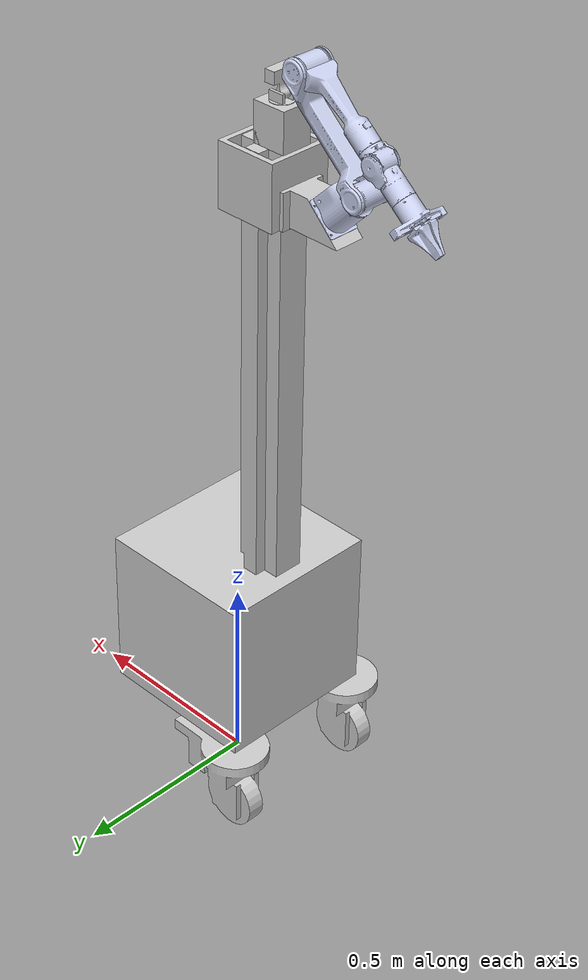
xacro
<?xml version="1.0"?>
<robot name="devkit_base_descr"
	xmlns:xacro="http://ros.org/wiki/xacro"
	xmlns:drake="http://drake.mit.edu">

	<xacro:arg name="base_frame" default="world"/>

	<xacro:include filename="$(find dim_cpp)/urdf/include/devkit_base.urdf.xacro" />
	<xacro:include filename="$(find dim_cpp)/urdf/include/piper_angled_base.urdf.xacro" />
	<xacro:include filename="$(find dim_cpp)/piper_description/urdf/piper_description_macro.xacro" />

	<link name="$(arg base_frame)" />
	<xacro:devkit_base base_frame="$(arg base_frame)" base_pos_x="0.0" base_pos_y="0.0" base_pos_z="0.23625" base_roll="0.0" base_pitch="0.0" base_yaw="0.0" r="0.8" g="0.8" b="0.8" a="1.0" />
	<xacro:piper_angled_base base_frame="pillar_platform" base_pos_x="0.0" base_pos_y="0.0" base_pos_z="0.0" base_roll="0.0" base_pitch="0.0" base_yaw="0.0" r="0.8" g="0.8" b="0.8" a="1.0" />
	<xacro:piper_arm base_frame="piper_angled_mount" base_pos_x="0.0" base_pos_y="0.292645" base_pos_z="1.42886" base_roll="0.0" base_pitch="0.7854" base_yaw="1.5707" r="0.8" g="0.8" b="0.8" a="1.0" />

	<drake:collision_filter_group name="no_collide">
		<drake:member link="base_center"/>
		<drake:member link="devkit_base_link"/>
		<drake:member link="pillar_platform"/>
		<drake:member link="piper_angled_mount"/>
		<drake:ignored_collision_filter_group name="no_collide"/>
  </drake:collision_filter_group>
</robot>

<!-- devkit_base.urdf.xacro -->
<robot name="devkit_base"
    xmlns:xacro="http://ros.org/wiki/xacro"
    xmlns:drake="http://drake.mit.edu">

    <xacro:macro name="devkit_base"
        params="base_frame base_pos_x base_pos_y base_pos_z  base_roll base_pitch base_yaw prefix:='' r:=0.8 g:=0.8 b:=0.8 a:=1.0 fixed:=false">

        <xacro:property
            name="file_prefix"
            value="package://dim_cpp" />

        <link name="base_center" />

        <joint name="base_parent_joint" type="fixed">
            <parent link="${base_frame}" />
            <child link="base_center" />
            <origin xyz="${base_pos_x} ${base_pos_y} ${base_pos_z}" rpy="${base_roll} ${base_pitch} ${base_yaw}" />
        </joint>

        <link name="devkit_base_link">
            <visual>
                <origin xyz="0 0 0" rpy="0 0 0" />
                <geometry>
                    <mesh filename="${file_prefix}/meshes/devkit_base/devkit_base_wheels_collision.stl" scale="1 1 1"/>
                </geometry>
                <material name="mat">
                    <color rgba="${r} ${g} ${b} ${a}" />
                </material>
            </visual>
            <inertial>
                <mass value="45"/>
                <inertia  ixx="12.732327" ixy="0" ixz="0" iyy="12.513553" iyz="0" izz="1.8057749" />
                <origin xyz=".225 -.2125 .9125" rpy="0 0 0" />
            </inertial>
            <collision name="collision_0000">
            <origin xyz="0 0 0" rpy="0 0 0"/>
            <geometry>
                <mesh filename="dim_cpp/meshes/devkit_base/devkit_base_wheels_parts/devkit_base_wheels_convex_piece_000.obj">
                <drake:declare_convex/>
                </mesh>
            </geometry>
            </collision>
            <collision name="collision_0001">
            <origin xyz="0 0 0" rpy="0 0 0"/>
            <geometry>
                <mesh filename="dim_cpp/meshes/devkit_base/devkit_base_wheels_parts/devkit_base_wheels_convex_piece_001.obj">
                <drake:declare_convex/>
                </mesh>
            </geometry>
            </collision>
            <collision name="collision_0002">
            <origin xyz="0 0 0" rpy="0 0 0"/>
            <geometry>
                <mesh filename="dim_cpp/meshes/devkit_base/devkit_base_wheels_parts/devkit_base_wheels_convex_piece_002.obj">
                <drake:declare_convex/>
                </mesh>
            </geometry>
            </collision>
            <collision name="collision_0003">
            <origin xyz="0 0 0" rpy="0 0 0"/>
            <geometry>
                <mesh filename="dim_cpp/meshes/devkit_base/devkit_base_wheels_parts/devkit_base_wheels_convex_piece_003.obj">
                <drake:declare_convex/>
                </mesh>
            </geometry>
            </collision>
            <collision name="collision_0004">
            <origin xyz="0 0 0" rpy="0 0 0"/>
            <geometry>
                <mesh filename="dim_cpp/meshes/devkit_base/devkit_base_wheels_parts/devkit_base_wheels_convex_piece_004.obj">
                <drake:declare_convex/>
                </mesh>
            </geometry>
            </collision>
            <collision name="collision_0005">
            <origin xyz="0 0 0" rpy="0 0 0"/>
            <geometry>
                <mesh filename="dim_cpp/meshes/devkit_base/devkit_base_wheels_parts/devkit_base_wheels_convex_piece_005.obj">
                <drake:declare_convex/>
                </mesh>
            </geometry>
            </collision>
            <collision name="collision_0006">
            <origin xyz="0 0 0" rpy="0 0 0"/>
            <geometry>
                <mesh filename="dim_cpp/meshes/devkit_base/devkit_base_wheels_parts/devkit_base_wheels_convex_piece_006.obj">
                <drake:declare_convex/>
                </mesh>
            </geometry>
            </collision>
            <collision name="collision_0007">
            <origin xyz="0 0 0" rpy="0 0 0"/>
            <geometry>
                <mesh filename="dim_cpp/meshes/devkit_base/devkit_base_wheels_parts/devkit_base_wheels_convex_piece_007.obj">
                <drake:declare_convex/>
                </mesh>
            </geometry>
            </collision>
            <collision name="collision_0008">
            <origin xyz="0 0 0" rpy="0 0 0"/>
            <geometry>
                <mesh filename="dim_cpp/meshes/devkit_base/devkit_base_wheels_parts/devkit_base_wheels_convex_piece_008.obj">
                <drake:declare_convex/>
                </mesh>
            </geometry>
            </collision>
            <collision name="collision_0009">
            <origin xyz="0 0 0" rpy="0 0 0"/>
            <geometry>
                <mesh filename="dim_cpp/meshes/devkit_base/devkit_base_wheels_parts/devkit_base_wheels_convex_piece_009.obj">
                <drake:declare_convex/>
                </mesh>
            </geometry>
            </collision>
            <collision name="collision_0010">
            <origin xyz="0 0 0" rpy="0 0 0"/>
            <geometry>
                <mesh filename="dim_cpp/meshes/devkit_base/devkit_base_wheels_parts/devkit_base_wheels_convex_piece_010.obj">
                <drake:declare_convex/>
                </mesh>
            </geometry>
            </collision>
            <collision name="collision_0011">
            <origin xyz="0 0 0" rpy="0 0 0"/>
            <geometry>
                <mesh filename="dim_cpp/meshes/devkit_base/devkit_base_wheels_parts/devkit_base_wheels_convex_piece_011.obj">
                <drake:declare_convex/>
                </mesh>
            </geometry>
            </collision>
            <collision name="collision_0012">
            <origin xyz="0 0 0" rpy="0 0 0"/>
            <geometry>
                <mesh filename="dim_cpp/meshes/devkit_base/devkit_base_wheels_parts/devkit_base_wheels_convex_piece_012.obj">
                <drake:declare_convex/>
                </mesh>
            </geometry>
            </collision>
            <collision name="collision_0013">
            <origin xyz="0 0 0" rpy="0 0 0"/>
            <geometry>
                <mesh filename="dim_cpp/meshes/devkit_base/devkit_base_wheels_parts/devkit_base_wheels_convex_piece_013.obj">
                <drake:declare_convex/>
                </mesh>
            </geometry>
            </collision>
            <collision name="collision_0014">
            <origin xyz="0 0 0" rpy="0 0 0"/>
            <geometry>
                <mesh filename="dim_cpp/meshes/devkit_base/devkit_base_wheels_parts/devkit_base_wheels_convex_piece_014.obj">
                <drake:declare_convex/>
                </mesh>
            </geometry>
            </collision>
            <collision name="collision_0015">
            <origin xyz="0 0 0" rpy="0 0 0"/>
            <geometry>
                <mesh filename="dim_cpp/meshes/devkit_base/devkit_base_wheels_parts/devkit_base_wheels_convex_piece_015.obj">
                <drake:declare_convex/>
                </mesh>
            </geometry>
            </collision>
            <collision name="collision_0016">
            <origin xyz="0 0 0" rpy="0 0 0"/>
            <geometry>
                <mesh filename="dim_cpp/meshes/devkit_base/devkit_base_wheels_parts/devkit_base_wheels_convex_piece_016.obj">
                <drake:declare_convex/>
                </mesh>
            </geometry>
            </collision>
            <collision name="collision_0017">
            <origin xyz="0 0 0" rpy="0 0 0"/>
            <geometry>
                <mesh filename="dim_cpp/meshes/devkit_base/devkit_base_wheels_parts/devkit_base_wheels_convex_piece_017.obj">
                <drake:declare_convex/>
                </mesh>
            </geometry>
            </collision>
            <collision name="collision_0018">
            <origin xyz="0 0 0" rpy="0 0 0"/>
            <geometry>
                <mesh filename="dim_cpp/meshes/devkit_base/devkit_base_wheels_parts/devkit_base_wheels_convex_piece_018.obj">
                <drake:declare_convex/>
                </mesh>
            </geometry>
            </collision>
            <collision name="collision_0019">
            <origin xyz="0 0 0" rpy="0 0 0"/>
            <geometry>
                <mesh filename="dim_cpp/meshes/devkit_base/devkit_base_wheels_parts/devkit_base_wheels_convex_piece_019.obj">
                <drake:declare_convex/>
                </mesh>
            </geometry>
            </collision>
            <collision name="collision_0020">
            <origin xyz="0 0 0" rpy="0 0 0"/>
            <geometry>
                <mesh filename="dim_cpp/meshes/devkit_base/devkit_base_wheels_parts/devkit_base_wheels_convex_piece_020.obj">
                <drake:declare_convex/>
                </mesh>
            </geometry>
            </collision>
            <collision name="collision_0021">
            <origin xyz="0 0 0" rpy="0 0 0"/>
            <geometry>
                <mesh filename="dim_cpp/meshes/devkit_base/devkit_base_wheels_parts/devkit_base_wheels_convex_piece_021.obj">
                <drake:declare_convex/>
                </mesh>
            </geometry>
            </collision>
            <collision name="collision_0022">
            <origin xyz="0 0 0" rpy="0 0 0"/>
            <geometry>
                <mesh filename="dim_cpp/meshes/devkit_base/devkit_base_wheels_parts/devkit_base_wheels_convex_piece_022.obj">
                <drake:declare_convex/>
                </mesh>
            </geometry>
            </collision>
            <collision name="collision_0023">
            <origin xyz="0 0 0" rpy="0 0 0"/>
            <geometry>
                <mesh filename="dim_cpp/meshes/devkit_base/devkit_base_wheels_parts/devkit_base_wheels_convex_piece_023.obj">
                <drake:declare_convex/>
                </mesh>
            </geometry>
            </collision>
            <collision name="collision_0024">
            <origin xyz="0 0 0" rpy="0 0 0"/>
            <geometry>
                <mesh filename="dim_cpp/meshes/devkit_base/devkit_base_wheels_parts/devkit_base_wheels_convex_piece_024.obj">
                <drake:declare_convex/>
                </mesh>
            </geometry>
            </collision>
            <collision name="collision_0025">
            <origin xyz="0 0 0" rpy="0 0 0"/>
            <geometry>
                <mesh filename="dim_cpp/meshes/devkit_base/devkit_base_wheels_parts/devkit_base_wheels_convex_piece_025.obj">
                <drake:declare_convex/>
                </mesh>
            </geometry>
            </collision>
            <collision name="collision_0026">
            <origin xyz="0 0 0" rpy="0 0 0"/>
            <geometry>
                <mesh filename="dim_cpp/meshes/devkit_base/devkit_base_wheels_parts/devkit_base_wheels_convex_piece_026.obj">
                <drake:declare_convex/>
                </mesh>
            </geometry>
            </collision>
            <collision name="collision_0027">
            <origin xyz="0 0 0" rpy="0 0 0"/>
            <geometry>
                <mesh filename="dim_cpp/meshes/devkit_base/devkit_base_wheels_parts/devkit_base_wheels_convex_piece_027.obj">
                <drake:declare_convex/>
                </mesh>
            </geometry>
            </collision>
            <collision name="collision_0028">
            <origin xyz="0 0 0" rpy="0 0 0"/>
            <geometry>
                <mesh filename="dim_cpp/meshes/devkit_base/devkit_base_wheels_parts/devkit_base_wheels_convex_piece_028.obj">
                <drake:declare_convex/>
                </mesh>
            </geometry>
            </collision>
            <collision name="collision_0029">
            <origin xyz="0 0 0" rpy="0 0 0"/>
            <geometry>
                <mesh filename="dim_cpp/meshes/devkit_base/devkit_base_wheels_parts/devkit_base_wheels_convex_piece_029.obj">
                <drake:declare_convex/>
                </mesh>
            </geometry>
            </collision>
            <collision name="collision_0030">
            <origin xyz="0 0 0" rpy="0 0 0"/>
            <geometry>
                <mesh filename="dim_cpp/meshes/devkit_base/devkit_base_wheels_parts/devkit_base_wheels_convex_piece_030.obj">
                <drake:declare_convex/>
                </mesh>
            </geometry>
            </collision>
            <collision name="collision_0031">
            <origin xyz="0 0 0" rpy="0 0 0"/>
            <geometry>
                <mesh filename="dim_cpp/meshes/devkit_base/devkit_base_wheels_parts/devkit_base_wheels_convex_piece_031.obj">
                <drake:declare_convex/>
                </mesh>
            </geometry>
            </collision>
            <collision name="collision_0032">
            <origin xyz="0 0 0" rpy="0 0 0"/>
            <geometry>
                <mesh filename="dim_cpp/meshes/devkit_base/devkit_base_wheels_parts/devkit_base_wheels_convex_piece_032.obj">
                <drake:declare_convex/>
                </mesh>
            </geometry>
            </collision>
            <collision name="collision_0033">
            <origin xyz="0 0 0" rpy="0 0 0"/>
            <geometry>
                <mesh filename="dim_cpp/meshes/devkit_base/devkit_base_wheels_parts/devkit_base_wheels_convex_piece_033.obj">
                <drake:declare_convex/>
                </mesh>
            </geometry>
            </collision>
            <collision name="collision_0034">
            <origin xyz="0 0 0" rpy="0 0 0"/>
            <geometry>
                <mesh filename="dim_cpp/meshes/devkit_base/devkit_base_wheels_parts/devkit_base_wheels_convex_piece_034.obj">
                <drake:declare_convex/>
                </mesh>
            </geometry>
            </collision>
            <collision name="collision_0035">
            <origin xyz="0 0 0" rpy="0 0 0"/>
            <geometry>
                <mesh filename="dim_cpp/meshes/devkit_base/devkit_base_wheels_parts/devkit_base_wheels_convex_piece_035.obj">
                <drake:declare_convex/>
                </mesh>
            </geometry>
            </collision>
            <collision name="collision_0036">
            <origin xyz="0 0 0" rpy="0 0 0"/>
            <geometry>
                <mesh filename="dim_cpp/meshes/devkit_base/devkit_base_wheels_parts/devkit_base_wheels_convex_piece_036.obj">
                <drake:declare_convex/>
                </mesh>
            </geometry>
            </collision>
            <collision name="collision_0037">
            <origin xyz="0 0 0" rpy="0 0 0"/>
            <geometry>
                <mesh filename="dim_cpp/meshes/devkit_base/devkit_base_wheels_parts/devkit_base_wheels_convex_piece_037.obj">
                <drake:declare_convex/>
                </mesh>
            </geometry>
            </collision>
            <collision name="collision_0038">
            <origin xyz="0 0 0" rpy="0 0 0"/>
            <geometry>
                <mesh filename="dim_cpp/meshes/devkit_base/devkit_base_wheels_parts/devkit_base_wheels_convex_piece_038.obj">
                <drake:declare_convex/>
                </mesh>
            </geometry>
            </collision>
            <collision name="collision_0039">
            <origin xyz="0 0 0" rpy="0 0 0"/>
            <geometry>
                <mesh filename="dim_cpp/meshes/devkit_base/devkit_base_wheels_parts/devkit_base_wheels_convex_piece_039.obj">
                <drake:declare_convex/>
                </mesh>
            </geometry>
            </collision>
            <collision name="collision_0040">
            <origin xyz="0 0 0" rpy="0 0 0"/>
            <geometry>
                <mesh filename="dim_cpp/meshes/devkit_base/devkit_base_wheels_parts/devkit_base_wheels_convex_piece_040.obj">
                <drake:declare_convex/>
                </mesh>
            </geometry>
            </collision>
            <collision name="collision_0041">
            <origin xyz="0 0 0" rpy="0 0 0"/>
            <geometry>
                <mesh filename="dim_cpp/meshes/devkit_base/devkit_base_wheels_parts/devkit_base_wheels_convex_piece_041.obj">
                <drake:declare_convex/>
                </mesh>
            </geometry>
            </collision>
            <collision name="collision_0042">
            <origin xyz="0 0 0" rpy="0 0 0"/>
            <geometry>
                <mesh filename="dim_cpp/meshes/devkit_base/devkit_base_wheels_parts/devkit_base_wheels_convex_piece_042.obj">
                <drake:declare_convex/>
                </mesh>
            </geometry>
            </collision>
            <collision name="collision_0043">
            <origin xyz="0 0 0" rpy="0 0 0"/>
            <geometry>
                <mesh filename="dim_cpp/meshes/devkit_base/devkit_base_wheels_parts/devkit_base_wheels_convex_piece_043.obj">
                <drake:declare_convex/>
                </mesh>
            </geometry>
            </collision>
            <collision name="collision_0044">
            <origin xyz="0 0 0" rpy="0 0 0"/>
            <geometry>
                <mesh filename="dim_cpp/meshes/devkit_base/devkit_base_wheels_parts/devkit_base_wheels_convex_piece_044.obj">
                <drake:declare_convex/>
                </mesh>
            </geometry>
            </collision>
            <collision name="collision_0045">
            <origin xyz="0 0 0" rpy="0 0 0"/>
            <geometry>
                <mesh filename="dim_cpp/meshes/devkit_base/devkit_base_wheels_parts/devkit_base_wheels_convex_piece_045.obj">
                <drake:declare_convex/>
                </mesh>
            </geometry>
            </collision>
            <collision name="collision_0046">
            <origin xyz="0 0 0" rpy="0 0 0"/>
            <geometry>
                <mesh filename="dim_cpp/meshes/devkit_base/devkit_base_wheels_parts/devkit_base_wheels_convex_piece_046.obj">
                <drake:declare_convex/>
                </mesh>
            </geometry>
            </collision>
            <collision name="collision_0047">
            <origin xyz="0 0 0" rpy="0 0 0"/>
            <geometry>
                <mesh filename="dim_cpp/meshes/devkit_base/devkit_base_wheels_parts/devkit_base_wheels_convex_piece_047.obj">
                <drake:declare_convex/>
                </mesh>
            </geometry>
            </collision>
            <collision name="collision_0048">
            <origin xyz="0 0 0" rpy="0 0 0"/>
            <geometry>
                <mesh filename="dim_cpp/meshes/devkit_base/devkit_base_wheels_parts/devkit_base_wheels_convex_piece_048.obj">
                <drake:declare_convex/>
                </mesh>
            </geometry>
            </collision>
            <collision name="collision_0049">
            <origin xyz="0 0 0" rpy="0 0 0"/>
            <geometry>
                <mesh filename="dim_cpp/meshes/devkit_base/devkit_base_wheels_parts/devkit_base_wheels_convex_piece_049.obj">
                <drake:declare_convex/>
                </mesh>
            </geometry>
            </collision>
            <collision name="collision_0050">
            <origin xyz="0 0 0" rpy="0 0 0"/>
            <geometry>
                <mesh filename="dim_cpp/meshes/devkit_base/devkit_base_wheels_parts/devkit_base_wheels_convex_piece_050.obj">
                <drake:declare_convex/>
                </mesh>
            </geometry>
            </collision>
            <collision name="collision_0051">
            <origin xyz="0 0 0" rpy="0 0 0"/>
            <geometry>
                <mesh filename="dim_cpp/meshes/devkit_base/devkit_base_wheels_parts/devkit_base_wheels_convex_piece_051.obj">
                <drake:declare_convex/>
                </mesh>
            </geometry>
            </collision>
            <collision name="collision_0052">
            <origin xyz="0 0 0" rpy="0 0 0"/>
            <geometry>
                <mesh filename="dim_cpp/meshes/devkit_base/devkit_base_wheels_parts/devkit_base_wheels_convex_piece_052.obj">
                <drake:declare_convex/>
                </mesh>
            </geometry>
            </collision>
            <collision name="collision_0053">
            <origin xyz="0 0 0" rpy="0 0 0"/>
            <geometry>
                <mesh filename="dim_cpp/meshes/devkit_base/devkit_base_wheels_parts/devkit_base_wheels_convex_piece_053.obj">
                <drake:declare_convex/>
                </mesh>
            </geometry>
            </collision>
            <collision name="collision_0054">
            <origin xyz="0 0 0" rpy="0 0 0"/>
            <geometry>
                <mesh filename="dim_cpp/meshes/devkit_base/devkit_base_wheels_parts/devkit_base_wheels_convex_piece_054.obj">
                <drake:declare_convex/>
                </mesh>
            </geometry>
            </collision>
            <collision name="collision_0055">
            <origin xyz="0 0 0" rpy="0 0 0"/>
            <geometry>
                <mesh filename="dim_cpp/meshes/devkit_base/devkit_base_wheels_parts/devkit_base_wheels_convex_piece_055.obj">
                <drake:declare_convex/>
                </mesh>
            </geometry>
            </collision>
            <collision name="collision_0056">
            <origin xyz="0 0 0" rpy="0 0 0"/>
            <geometry>
                <mesh filename="dim_cpp/meshes/devkit_base/devkit_base_wheels_parts/devkit_base_wheels_convex_piece_056.obj">
                <drake:declare_convex/>
                </mesh>
            </geometry>
            </collision>
            <collision name="collision_0057">
            <origin xyz="0 0 0" rpy="0 0 0"/>
            <geometry>
                <mesh filename="dim_cpp/meshes/devkit_base/devkit_base_wheels_parts/devkit_base_wheels_convex_piece_057.obj">
                <drake:declare_convex/>
                </mesh>
            </geometry>
            </collision>
            <collision name="collision_0058">
            <origin xyz="0 0 0" rpy="0 0 0"/>
            <geometry>
                <mesh filename="dim_cpp/meshes/devkit_base/devkit_base_wheels_parts/devkit_base_wheels_convex_piece_058.obj">
                <drake:declare_convex/>
                </mesh>
            </geometry>
            </collision>
            <collision name="collision_0059">
            <origin xyz="0 0 0" rpy="0 0 0"/>
            <geometry>
                <mesh filename="dim_cpp/meshes/devkit_base/devkit_base_wheels_parts/devkit_base_wheels_convex_piece_059.obj">
                <drake:declare_convex/>
                </mesh>
            </geometry>
            </collision>
            <collision name="collision_0060">
            <origin xyz="0 0 0" rpy="0 0 0"/>
            <geometry>
                <mesh filename="dim_cpp/meshes/devkit_base/devkit_base_wheels_parts/devkit_base_wheels_convex_piece_060.obj">
                <drake:declare_convex/>
                </mesh>
            </geometry>
            </collision>
            <collision name="collision_0061">
            <origin xyz="0 0 0" rpy="0 0 0"/>
            <geometry>
                <mesh filename="dim_cpp/meshes/devkit_base/devkit_base_wheels_parts/devkit_base_wheels_convex_piece_061.obj">
                <drake:declare_convex/>
                </mesh>
            </geometry>
            </collision>
            <collision name="collision_0062">
            <origin xyz="0 0 0" rpy="0 0 0"/>
            <geometry>
                <mesh filename="dim_cpp/meshes/devkit_base/devkit_base_wheels_parts/devkit_base_wheels_convex_piece_062.obj">
                <drake:declare_convex/>
                </mesh>
            </geometry>
            </collision>
            <collision name="collision_0063">
            <origin xyz="0 0 0" rpy="0 0 0"/>
            <geometry>
                <mesh filename="dim_cpp/meshes/devkit_base/devkit_base_wheels_parts/devkit_base_wheels_convex_piece_063.obj">
                <drake:declare_convex/>
                </mesh>
            </geometry>
            </collision>
        </link>

        <joint name="base_center_joint" type="fixed">
            <parent link="base_center" />
            <child link="devkit_base_link" />
            <origin xyz="0 0 0" rpy="0 0 1.5707" />
        </joint>

        <link name="pan_tilt_base">
            <visual>
                <origin xyz="0 0 0" rpy="0 0 0" />
                <geometry>
                    <mesh filename="${file_prefix}/meshes/devkit_base/pan_tilt_base_collision.stl" scale="1 1 1"/>
                </geometry>
                <material name="mat">
                    <color rgba="${r} ${g} ${b} ${a}" />
                </material>
            </visual>
            <collision>
                <origin xyz="0 0 0" rpy="0 0 0" />
                <geometry>
                    <mesh filename="${file_prefix}/meshes/devkit_base/pan_tilt_base_collision.stl" scale="1 1 1"/>
                </geometry>
                <material name="mat">
                    <color rgba="${r} ${g} ${b} ${a}" />
                </material>
            </collision>
        </link>

        <joint name="pan_tilt_base_joint" type="fixed">
            <parent link="devkit_base_link" />
            <child link="pan_tilt_base" />
            <origin xyz="0 0 0" rpy="0 0 0" />
        </joint>

        <link name="pan_tilt_pan">
            <visual>
                <origin xyz="0 -.1325 0" rpy="0 0 0" />
                <geometry>
                    <mesh filename="${file_prefix}/meshes/devkit_base/pan_tilt_pan_collision.stl" scale="1 1 1"/>
                </geometry>
                <material name="mat">
                    <color rgba="${r} ${g} ${b} ${a}" />
                </material>
            </visual>
            <collision>
                <origin xyz="0 -.1325 0" rpy="0 0 0" />
                <geometry>
                    <mesh filename="${file_prefix}/meshes/devkit_base/pan_tilt_pan_collision.stl" scale="1 1 1"/>
                </geometry>
                <material name="mat">
                    <color rgba="${r} ${g} ${b} ${a}" />
                </material>
            </collision>
        </link>

        <joint name="pan_tilt_pan_joint" type="revolute">
            <parent link="pan_tilt_base" />
            <child link="pan_tilt_pan" />
            <origin xyz="0 .1325 0" rpy="0 0 0" />
            <axis xyz="0 0 1" />
            <limit lower="-3.14" upper="3.14" effort="100" velocity="1"/>
        </joint>

        <link name="pan_tilt_head">
            <visual>
                <origin xyz="0 -.1325 -1.659" rpy="0 0 0" />
                <geometry>
                    <mesh filename="${file_prefix}/meshes/devkit_base/pan_tilt_head_collision.stl" scale="1 1 1"/>
                </geometry>
                <material name="mat">
                    <color rgba="${r} ${g} ${b} ${a}" />
                </material>
            </visual>
            <collision>
                <origin xyz="0 -.1325 -1.659" rpy="0 0 0" />
                <geometry>
                    <mesh filename="${file_prefix}/meshes/devkit_base/pan_tilt_head_collision.stl" scale="1 1 1"/>
                </geometry>
                <material name="mat">
                    <color rgba="${r} ${g} ${b} ${a}" />
                </material>
            </collision>
        </link>

        <joint name="pan_tilt_head_joint" type="revolute">
            <parent link="pan_tilt_pan" />
            <child link="pan_tilt_head" />
            <origin xyz="0 0 1.659" rpy="0 0 0" />
            <axis xyz="1 0 0" />
            <limit lower="-1.57" upper="1.57" effort="100" velocity="1"/>
        </joint>

        <link name="camera_center_link" />

        <joint name="camera_center_joint" type="fixed">
            <parent link="pan_tilt_head" />
            <child link="camera_center_link" />
            <origin xyz="0 0.027 .057055" rpy="0 0 0" />
        </joint>

        <link name="pillar_platform">
            <visual>
                <origin xyz="0 0 0" rpy="0 0 0" />
                <geometry>
                    <mesh filename="${file_prefix}/meshes/devkit_base/pillar_platform_collision.stl" scale="1 1 1"/>
                </geometry>
                <material name="mat">
                    <color rgba="${r} ${g} ${b} ${a}" />
                </material>
            </visual>
            <collision>
                <origin xyz="0 0 0" rpy="0 0 0" />
                <geometry>
                    <mesh filename="${file_prefix}/meshes/devkit_base/pillar_platform_collision.stl" scale="1 1 1"/>
                </geometry>
                <material name="mat">
                    <color rgba="${r} ${g} ${b} ${a}" />
                </material>
            </collision>
            <inertial>
                <mass value="1.5"/>
                <inertia  ixx="0.008729344" ixy="0" ixz="0" iyy="0.0085796565" iyz="0" izz="0.01050275" />
                <origin xyz=".225 -.365 1.41" rpy="0 0 0" />
            </inertial>
        </link>

        <xacro:unless value="${fixed}">
            <joint name="pillar_platform_joint" type="prismatic">
                <parent link="devkit_base_link" />
                <child link="pillar_platform" />
                <origin xyz="0 0 0" rpy="0 0 0" />
                <axis xyz="0 0 1" />
                <limit lower="-0.65" upper="0.0" effort="100" velocity="0.1"/>
            </joint>
        </xacro:unless>
        <xacro:if value="${fixed}">
            <joint name="pillar_platform_joint" type="fixed">
                <parent link="devkit_base_link" />
                <child link="pillar_platform" />
                <origin xyz="0 0 0" rpy="0 0 0" />
            </joint>
        </xacro:if>

    </xacro:macro>
</robot>

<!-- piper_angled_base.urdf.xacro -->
<robot name="piper_angled_base"
    xmlns:xacro="http://ros.org/wiki/xacro">

    <xacro:macro name="piper_angled_base"
        params="base_frame base_pos_x base_pos_y base_pos_z  base_roll base_pitch base_yaw prefix:='' r:=0.8 g:=0.8 b:=0.8 a:=1.0">

        <xacro:property
            name="file_prefix"
            value="package://dim_cpp" />

        <link name="piper_angled_mount">
            <visual>
                <origin xyz="0 0 0" rpy="0 0 0" />
                <geometry>
                    <mesh filename="${file_prefix}/meshes/devkit_base/piper_angled_mount_collision.stl" scale="1 1 1"/>
                </geometry>
                <material name="mat">
                    <color rgba="${r} ${g} ${b} ${a}" />
                </material>
            </visual>
            <collision>
                <origin xyz="0 0 0" rpy="0 0 0" />
                <geometry>
                    <mesh filename="${file_prefix}/meshes/devkit_base/piper_angled_mount_collision.stl" scale="1 1 1"/>
                </geometry>
                <material name="mat">
                    <color rgba="${r} ${g} ${b} ${a}" />
                </material>
            </collision>
            <inertial>
                <mass value="1.5"/>
                <inertia  ixx="0.008729344" ixy="0" ixz="0" iyy="0.0085796565" iyz="0" izz="0.01050275" />
                <origin xyz=".225 -.365 1.41" rpy="0 0 0" />
            </inertial>
        </link>

        <joint name="piper_mount_joint" type="fixed">
            <parent link="${base_frame}" />
            <child link="piper_angled_mount" />
            <origin xyz="${base_pos_x} ${base_pos_y} ${base_pos_z}" rpy="${base_roll} ${base_pitch} ${base_yaw}" />
        </joint>

    </xacro:macro>
</robot>

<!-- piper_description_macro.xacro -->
<robot
  name="piper"
  xmlns:xacro="http://ros.org/wiki/xacro">

  <xacro:macro name="piper_arm" params="base_frame base_pos_x base_pos_y base_pos_z  base_roll base_pitch base_yaw prefix:='' r:=0.8 g:=0.8 b:=0.8 a:=1.0" >
    <!-- world -->
    <joint name="fixed_base_joint" type="fixed">
        <parent link="${base_frame}"/>
        <child link="base_link"/>
        <origin xyz="${base_pos_x} ${base_pos_y} ${base_pos_z}" rpy="${base_roll} ${base_pitch} ${base_yaw}" />
    </joint>
    <link
      name="base_link">
      <inertial>
        <origin
          xyz="-0.00473641164191482 2.56829134630247E-05 0.041451518036016"
          rpy="0 0 0" />
        <mass
          value="1.02" />
        <inertia
          ixx="0.00267433"
          ixy="-0.00000073"
          ixz="-0.00017389"
          iyy="0.00282612"
          iyz="0.0000004"
          izz="0.00089624" />
      </inertial>
      <visual>
        <origin
          xyz="0 0 0"
          rpy="0 0 0" />
        <geometry>
          <mesh
            filename="package://dim_cpp/piper_description/meshes/base_link.STL" />
        </geometry>
        <material
          name="">
          <color
            rgba="0.792156862745098 0.819607843137255 0.933333333333333 1" />
        </material>
      </visual>
      <collision>
        <origin
          xyz="0 0 0"
          rpy="0 0 0" />
        <geometry>
          <mesh
            filename="package://dim_cpp/piper_description/meshes/base_link.STL" />
        </geometry>
      </collision>
    </link>
    <link
      name="link1">
      <inertial>
        <origin
          xyz="0.000121504734057468 0.000104632162460536 -0.00438597309559853"
          rpy="0 0 0" />
        <mass
          value="0.71" />
        <inertia
          ixx="0.00048916"
          ixy="-0.00000036"
          ixz="-0.00000224"
          iyy="0.00040472"
          iyz="-0.00000242"
          izz="0.00043982" />
      </inertial>
      <visual>
        <origin
          xyz="0 0 0"
          rpy="0 0 0" />
        <geometry>
          <mesh
            filename="package://dim_cpp/piper_description/meshes/link1.STL" />
        </geometry>
        <material
          name="">
          <color
            rgba="0.792156862745098 0.819607843137255 0.933333333333333 1" />
        </material>
      </visual>
      <collision>
        <origin
          xyz="0 0 0"
          rpy="0 0 0" />
        <geometry>
          <mesh
            filename="package://dim_cpp/piper_description/meshes/link1.STL" />
        </geometry>
      </collision>
    </link>
    <joint
      name="joint1"
      type="revolute">
      <origin
        xyz="0 0 0.123"
        rpy="0 0 0" />
      <parent
        link="base_link" />
      <child
        link="link1" />
      <axis
        xyz="0 0 1" />
      <limit
        lower="-2.618"
        upper="2.168"
        effort="100"
        velocity="5" />
    </joint>
    <link
      name="link2">
      <inertial>
        <origin
          xyz="0.198666145229743 -0.010926924140076 0.00142121714502687"
          rpy="0 0 0" />
        <mass
          value="1.17" />
        <inertia
          ixx="0.00116918"
          ixy="-0.00180037"
          ixz="0.00025146"
          iyy="0.06785384"
          iyz="-0.00000455"
          izz="0.06774489" />
      </inertial>
      <visual>
        <origin
          xyz="0 0 0"
          rpy="0 0 0" />
        <geometry>
          <mesh
            filename="package://dim_cpp/piper_description/meshes/link2.STL" />
        </geometry>
        <material
          name="">
          <color
            rgba="0.792156862745098 0.819607843137255 0.933333333333333 1" />
        </material>
      </visual>
      <collision>
        <origin
          xyz="0 0 0"
          rpy="0 0 0" />
        <geometry>
          <mesh
            filename="package://dim_cpp/piper_description/meshes/link2.STL" />
        </geometry>
      </collision>
    </link>
    <joint
      name="joint2"
      type="revolute">
      <origin
        xyz="0 0 0"
        rpy="1.5708 -0.1359 -3.1416" />
      <parent
        link="link1" />
      <child
        link="link2" />
      <axis
        xyz="0 0 1" />
      <limit
        lower="0"
        upper="3.14"
        effort="100"
        velocity="5" />
    </joint>
    <link
      name="link3">
      <inertial>
        <origin
          xyz="-0.0202737662122021 -0.133914995944595 -0.000458682652737356"
          rpy="0 0 0" />
        <mass
          value="0.5" />
        <inertia
          ixx="0.01361711"
          ixy="0.00165794"
          ixz="-0.00000048"
          iyy="0.00045024"
          iyz="-0.00000045"
          izz="0.01380322" />
      </inertial>
      <visual>
        <origin
          xyz="0 0 0"
          rpy="0 0 0" />
        <geometry>
          <mesh
            filename="package://dim_cpp/piper_description/meshes/link3.STL" />
        </geometry>
        <material
          name="">
          <color
            rgba="0.792156862745098 0.819607843137255 0.933333333333333 1" />
        </material>
      </visual>
      <collision>
        <origin
          xyz="0 0 0"
          rpy="0 0 0" />
        <geometry>
          <mesh
            filename="package://dim_cpp/piper_description/meshes/link3.STL" />
        </geometry>
      </collision>
    </link>
    <joint
      name="joint3"
      type="revolute">
      <origin
        xyz="0.28503 0 0"
        rpy="0 0 -1.7939" />
      <parent
        link="link2" />
      <child
        link="link3" />
      <axis
        xyz="0 0 1" />
      <limit
        lower="-2.967"
        upper="0"
        effort="100"
        velocity="5" />
    </joint>
    <link
      name="link4">
      <inertial>
        <origin
          xyz="-9.66635791618542E-05 0.000876064475651083 -0.00496880904640868"
          rpy="0 0 0" />
        <mass
          value="0.38" />
        <inertia
          ixx="0.00018501"
          ixy="0.00000054"
          ixz="0.00000120"
          iyy="0.00018965"
          iyz="-0.00000841"
          izz="0.00015484" />
      </inertial>
      <visual>
        <origin
          xyz="0 0 0"
          rpy="0 0 0" />
        <geometry>
          <mesh
            filename="package://dim_cpp/piper_description/meshes/link4.STL" />
        </geometry>
        <material
          name="">
          <color
            rgba="0.792156862745098 0.819607843137255 0.933333333333333 1" />
        </material>
      </visual>
      <collision>
        <origin
          xyz="0 0 0"
          rpy="0 0 0" />
        <geometry>
          <mesh
            filename="package://dim_cpp/piper_description/meshes/link4.STL" />
        </geometry>
      </collision>
    </link>
    <joint
      name="joint4"
      type="revolute">
      <origin
        xyz="-0.021984 -0.25075 0"
        rpy="1.5708 0 0" />
      <parent
        link="link3" />
      <child
        link="link4" />
      <axis
        xyz="0 0 1" />
      <limit
        lower="-1.745"
        upper="1.745"
        effort="100"
        velocity="5" />
    </joint>
    <link
      name="link5">
      <inertial>
        <origin
          xyz="-4.10554118924211E-05 -0.0566486692356075 -0.0037205791677906"
          rpy="0 0 0" />
        <mass
          value="0.383" />
        <inertia
          ixx="0.00166169"
          ixy="0.00000006"
          ixz="-0.00000007"
          iyy="0.00018510"
          iyz="0.00001026"
          izz="0.00164321" />
      </inertial>
      <visual>
        <origin
          xyz="0 0 0"
          rpy="0 0 0" />
        <geometry>
          <mesh
            filename="package://dim_cpp/piper_description/meshes/link5.STL" />
        </geometry>
        <material
          name="">
          <color
            rgba="0.792156862745098 0.819607843137255 0.933333333333333 1" />
        </material>
      </visual>
      <collision>
        <origin
          xyz="0 0 0"
          rpy="0 0 0" />
        <geometry>
          <mesh
            filename="package://dim_cpp/piper_description/meshes/link5.STL" />
        </geometry>
      </collision>
    </link>
    <joint
      name="joint5"
      type="revolute">
      <origin
        xyz="0 0 0"
        rpy="-1.5708 0 0" />
      <parent
        link="link4" />
      <child
        link="link5" />
      <axis
        xyz="0 0 1" />
      <limit
        lower="-1.22"
        upper="1.22"
        effort="100"
        velocity="5" />
    </joint>
    <link
      name="link6">
      <inertial>
        <origin
          xyz="-8.82590762930069E-05 9.0598378529832E-06 -0.002"
          rpy="0 0 0" />
        <mass
          value="0.00699089613564366" />
        <inertia
          ixx="5.73015540542155E-07"
          ixy="-1.98305403089247E-22"
          ixz="-7.2791893904596E-23"
          iyy="5.73015540542155E-07"
          iyz="-3.4146026640245E-24"
          izz="1.06738869138926E-06" />
      </inertial>
      <visual>
        <origin
          xyz="0 0 0"
          rpy="0 0 0" />
        <geometry>
          <mesh
            filename="package://dim_cpp/piper_description/meshes/link6.STL" />
        </geometry>
        <material
          name="">
          <color
            rgba="0.898039215686275 0.917647058823529 0.929411764705882 1" />
        </material>
      </visual>
      <collision>
        <origin
          xyz="0 0 0"
          rpy="0 0 0" />
        <geometry>
          <mesh
            filename="package://dim_cpp/piper_description/meshes/link6.STL" />
        </geometry>
      </collision>
    </link>
    <joint
      name="joint6"
      type="revolute">
      <origin
        xyz="8.8259E-05 -0.091 0"
        rpy="1.5708 0 0" />
      <parent
        link="link5" />
      <child
        link="link6" />
      <axis
        xyz="0 0 1" />
      <limit
        lower="-2.0944"
        upper="2.0944"
        effort="100"
        velocity="3" />
    </joint>
    <link
      name="gripper_base">
      <inertial>
        <origin
          xyz="-0.000183807162235591 8.05033155577911E-05 0.0321436689908876"
          rpy="0 0 0" />
        <mass
          value="0.45" />
        <inertia
          ixx="0.00092934"
          ixy="0.00000034"
          ixz="-0.00000738"
          iyy="0.00071447"
          iyz="0.00000005"
          izz="0.00039442" />
      </inertial>
      <visual>
        <origin
          xyz="0 0 0"
          rpy="0 0 0" />
        <geometry>
          <mesh
            filename="package://dim_cpp/piper_description/meshes/gripper_base.STL" />
        </geometry>
        <material
          name="">
          <color
            rgba="0.792156862745098 0.819607843137255 0.933333333333333 1" />
        </material>
      </visual>
      <collision>
        <origin
          xyz="0 0 0"
          rpy="0 0 0" />
        <geometry>
          <mesh
            filename="package://dim_cpp/piper_description/meshes/gripper_base.STL" />
        </geometry>
      </collision>
    </link>
    <joint
      name="joint6_to_gripper_base"
      type="fixed">
      <origin
        xyz="0 0 0"
        rpy="0 0 0" />
      <parent
        link="link6" />
      <child
        link="gripper_base" />
    </joint>
    <link
      name="link7">
      <inertial>
        <origin
          xyz="0.00065123185041968 -0.0491929869131989 0.00972258769184025"
          rpy="0 0 0" />
        <mass
          value="0.025" />
        <inertia
          ixx="0.00007371"
          ixy="-0.00000113"
          ixz="0.00000021"
          iyy="0.00000781"
          iyz="-0.00001372"
          izz="0.0000747" />
      </inertial>
      <visual>
        <origin
          xyz="0 0 0"
          rpy="0 0 0" />
        <geometry>
          <mesh
            filename="package://dim_cpp/piper_description/meshes/link7.STL" />
        </geometry>
        <material
          name="">
          <color
            rgba="0.792156862745098 0.819607843137255 0.933333333333333 1" />
        </material>
      </visual>
      <collision>
        <origin
          xyz="0 0 0"
          rpy="0 0 0" />
        <geometry>
          <mesh
            filename="package://dim_cpp/piper_description/meshes/link7.STL" />
        </geometry>
      </collision>
    </link>
    <joint
      name="joint7"
      type="prismatic">
      <origin
        xyz="0 0 0.1358"
        rpy="1.5708 0 0" />
      <parent
        link="gripper_base" />
      <child
        link="link7" />
      <axis
        xyz="0 0 1" />
      <limit
        lower="0"
        upper="0.035"
        effort="10"
        velocity="1" />
    </joint>
    <link
      name="link8">
      <inertial>
        <origin
          xyz="0.000651231850419722 -0.0491929869131991 0.00972258769184024"
          rpy="0 0 0" />
        <mass
          value="0.025" />
        <inertia
          ixx="0.00007371"
          ixy="-0.00000113"
          ixz="0.00000021"
          iyy="0.00000781"
          iyz="-0.00001372"
          izz="0.0000747" />
      </inertial>
      <visual>
        <origin
          xyz="0 0 0"
          rpy="0 0 0" />
        <geometry>
          <mesh
            filename="package://dim_cpp/piper_description/meshes/link8.STL" />
        </geometry>
        <material
          name="">
          <color
            rgba="0.792156862745098 0.819607843137255 0.933333333333333 1" />
        </material>
      </visual>
      <collision>
        <origin
          xyz="0 0 0"
          rpy="0 0 0" />
        <geometry>
          <mesh
            filename="package://dim_cpp/piper_description/meshes/link8.STL" />
        </geometry>
      </collision>
    </link>
    <joint
      name="joint8"
      type="prismatic">
      <origin
        xyz="0 0 0.1358"
        rpy="1.5708 0 -3.1416" />
      <parent
        link="gripper_base" />
      <child
        link="link8" />
      <axis
        xyz="0 0 -1" />
      <limit
        lower="-0.035"
        upper="0"
        effort="10"
        velocity="1" />
    </joint>
  </xacro:macro>
</robot>
